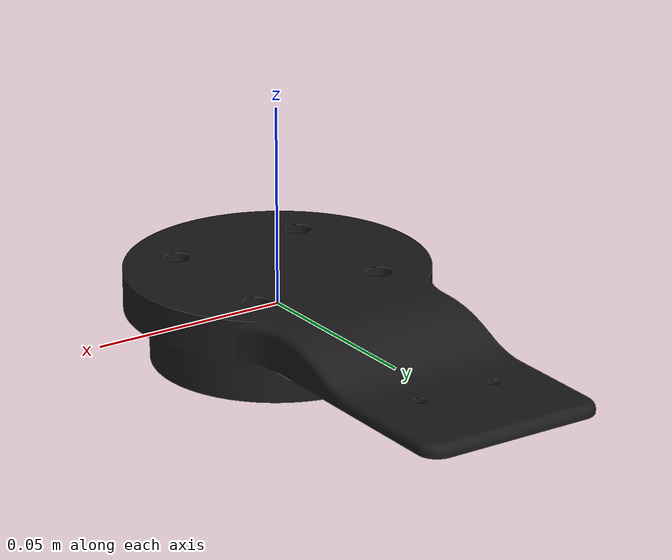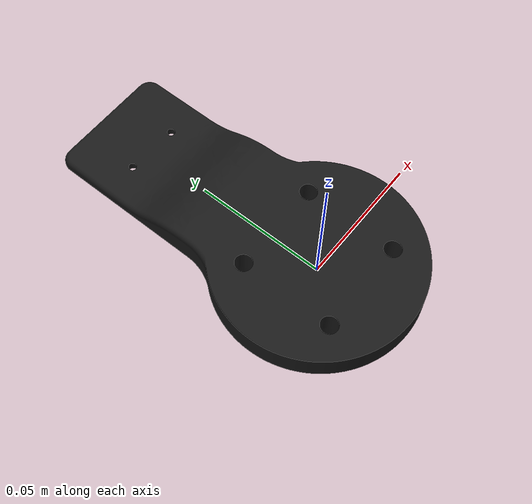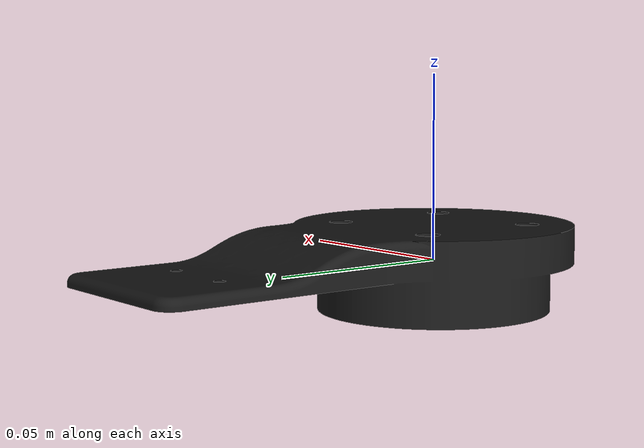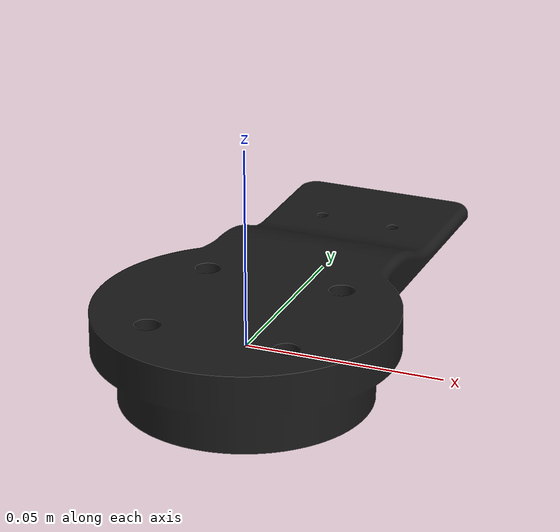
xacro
<?xml version="1.0"?>
<robot xmlns:xacro="http://www.ros.org/wiki/xacro" name="rs_tool_mount">

  <!-- Define properties -->
  <xacro:property name="mesh_scale" value="0.001 0.001 0.001" /> <!-- Adjust if mm->m conversion needed -->

  <material name="blackish">
       <color rgba="0.1 0.1 0.1 1"/>
  </material>

  <!-- BASE LINK (connects to robot flange) -->
  <link name="rs_tool_mount_link">
    <visual>
      <geometry>
        <mesh filename="package://nakit_visualisation/meshes/rs_gripper_mount.stl"
              scale="${mesh_scale}"/>
      </geometry>
      <material name="blackish"/>
    </visual>
  </link>

</robot>
